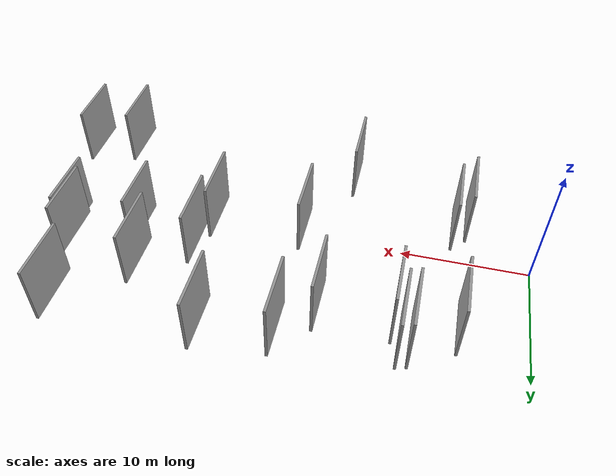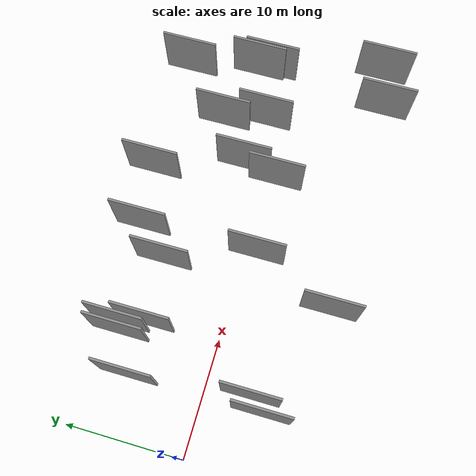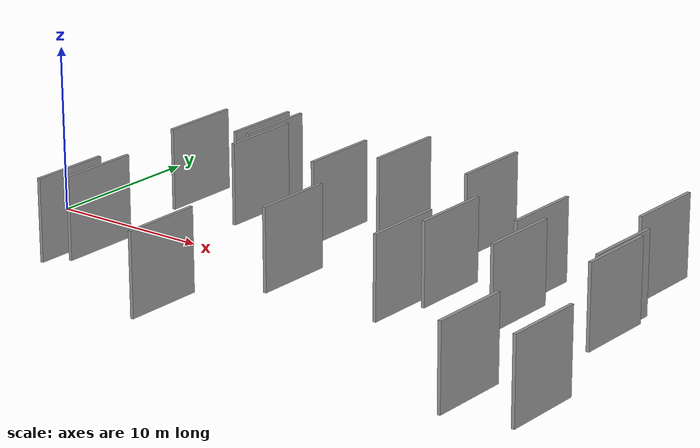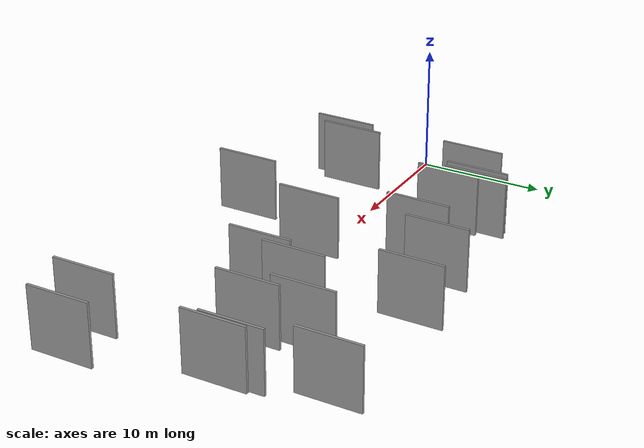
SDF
<sdf version="1.6">
 <world name="default">
  <scene>
   <sky><clouds><speed>12</speed></clouds></sky>
   <ambient>0.4 0.4 0.4 1</ambient>
   <background>0.7 0.7 0.7 1</background>
   <shadows>1</shadows>
  </scene>
  <gravity>0 0 -9.8066</gravity>
  <magnetic_field>6e-06 2.3e-05 -4.2e-05</magnetic_field>
  <physics default="0" name="default_physics" type="ode">
   <ode>
    <solver>
     <type>quick</type>
     <iters>10</iters>
     <sor>1.0</sor>
     <use_dynamic_moi_rescaling>0</use_dynamic_moi_rescaling>
    </solver>
    <constraints>
     <cfm>0</cfm>
     <erp>0.2</erp>
     <contact_max_correcting_vel>100</contact_max_correcting_vel>
     <contact_surface_layer>0.001</contact_surface_layer>
    </constraints>
   </ode>
   <max_step_size>0.004</max_step_size>
   <real_time_factor>1</real_time_factor>
   <real_time_update_rate>250</real_time_update_rate>
  </physics>
  <light name="sun" type="directional">
   <pose>0 0 10 0 0 0</pose>
   <diffuse>0.8 0.8 0.8 1</diffuse>
   <specular>0.2 0.2 0.2 1</specular>
   <attenuation>
    <range>1000</range>
    <constant>0.9</constant>
    <linear>0.01</linear>
    <quadratic>0.001</quadratic>
   </attenuation>
   <direction>-0.5 0.1 -0.9</direction>
  </light>
  <model name="grey_wall_1">
   <static>1</static>
   <pose>6.1641 -3.7727 0.0 0.000000 0.000000 1.570796</pose>
   <link name="link">
    <pose>0 0 2.50 0 0 0</pose>
    <collision name="collision"><geometry><box><size>5.00 0.2 5.00</size></box></geometry></collision>
    <visual name="visual">
     <cast_shadows>0</cast_shadows>
     <geometry><box><size>5.00 0.2 5.00</size></box></geometry>
     <material>
      <script>
       <uri>model://grey_wall/materials/scripts</uri>
       <uri>model://grey_wall/materials/textures</uri>
       <name>vrc/grey_wall</name>
      </script>
     </material>
    </visual>
   </link>
  </model>
  <model name="grey_wall_2">
   <static>1</static>
   <pose>26.2508 2.5221 0.0 0.000000 0.000000 1.570796</pose>
   <link name="link">
    <pose>0 0 2.50 0 0 0</pose>
    <collision name="collision"><geometry><box><size>5.00 0.2 5.00</size></box></geometry></collision>
    <visual name="visual">
     <cast_shadows>0</cast_shadows>
     <geometry><box><size>5.00 0.2 5.00</size></box></geometry>
     <material>
      <script>
       <uri>model://grey_wall/materials/scripts</uri>
       <uri>model://grey_wall/materials/textures</uri>
       <name>vrc/grey_wall</name>
      </script>
     </material>
    </visual>
   </link>
  </model>
  <model name="grey_wall_3">
   <static>1</static>
   <pose>36.4017 3.8756 0.0 0.000000 0.000000 1.570796</pose>
   <link name="link">
    <pose>0 0 2.50 0 0 0</pose>
    <collision name="collision"><geometry><box><size>5.00 0.2 5.00</size></box></geometry></collision>
    <visual name="visual">
     <cast_shadows>0</cast_shadows>
     <geometry><box><size>5.00 0.2 5.00</size></box></geometry>
     <material>
      <script>
       <uri>model://grey_wall/materials/scripts</uri>
       <uri>model://grey_wall/materials/textures</uri>
       <name>vrc/grey_wall</name>
      </script>
     </material>
    </visual>
   </link>
  </model>
  <model name="grey_wall_4">
   <static>1</static>
   <pose>31.1957 1.8677 0.0 0.000000 0.000000 1.570796</pose>
   <link name="link">
    <pose>0 0 2.50 0 0 0</pose>
    <collision name="collision"><geometry><box><size>5.00 0.2 5.00</size></box></geometry></collision>
    <visual name="visual">
     <cast_shadows>0</cast_shadows>
     <geometry><box><size>5.00 0.2 5.00</size></box></geometry>
     <material>
      <script>
       <uri>model://grey_wall/materials/scripts</uri>
       <uri>model://grey_wall/materials/textures</uri>
       <name>vrc/grey_wall</name>
      </script>
     </material>
    </visual>
   </link>
  </model>
  <model name="grey_wall_5">
   <static>1</static>
   <pose>15.3602 6.6557 0.0 0.000000 0.000000 1.570796</pose>
   <link name="link">
    <pose>0 0 2.50 0 0 0</pose>
    <collision name="collision"><geometry><box><size>5.00 0.2 5.00</size></box></geometry></collision>
    <visual name="visual">
     <cast_shadows>0</cast_shadows>
     <geometry><box><size>5.00 0.2 5.00</size></box></geometry>
     <material>
      <script>
       <uri>model://grey_wall/materials/scripts</uri>
       <uri>model://grey_wall/materials/textures</uri>
       <name>vrc/grey_wall</name>
      </script>
     </material>
    </visual>
   </link>
  </model>
  <model name="grey_wall_6">
   <static>1</static>
   <pose>25.4307 -0.7055 0.0 0.000000 0.000000 1.570796</pose>
   <link name="link">
    <pose>0 0 2.50 0 0 0</pose>
    <collision name="collision"><geometry><box><size>5.00 0.2 5.00</size></box></geometry></collision>
    <visual name="visual">
     <cast_shadows>0</cast_shadows>
     <geometry><box><size>5.00 0.2 5.00</size></box></geometry>
     <material>
      <script>
       <uri>model://grey_wall/materials/scripts</uri>
       <uri>model://grey_wall/materials/textures</uri>
       <name>vrc/grey_wall</name>
      </script>
     </material>
    </visual>
   </link>
  </model>
  <model name="grey_wall_7">
   <static>1</static>
   <pose>8.3149 8.2045 0.0 0.000000 0.000000 1.570796</pose>
   <link name="link">
    <pose>0 0 2.50 0 0 0</pose>
    <collision name="collision"><geometry><box><size>5.00 0.2 5.00</size></box></geometry></collision>
    <visual name="visual">
     <cast_shadows>0</cast_shadows>
     <geometry><box><size>5.00 0.2 5.00</size></box></geometry>
     <material>
      <script>
       <uri>model://grey_wall/materials/scripts</uri>
       <uri>model://grey_wall/materials/textures</uri>
       <name>vrc/grey_wall</name>
      </script>
     </material>
    </visual>
   </link>
  </model>
  <model name="grey_wall_8">
   <static>1</static>
   <pose>9.6801 6.3993 0.0 0.000000 0.000000 1.570796</pose>
   <link name="link">
    <pose>0 0 2.50 0 0 0</pose>
    <collision name="collision"><geometry><box><size>5.00 0.2 5.00</size></box></geometry></collision>
    <visual name="visual">
     <cast_shadows>0</cast_shadows>
     <geometry><box><size>5.00 0.2 5.00</size></box></geometry>
     <material>
      <script>
       <uri>model://grey_wall/materials/scripts</uri>
       <uri>model://grey_wall/materials/textures</uri>
       <name>vrc/grey_wall</name>
      </script>
     </material>
    </visual>
   </link>
  </model>
  <model name="grey_wall_9">
   <static>1</static>
   <pose>5.0648 6.3262 0.0 0.000000 0.000000 1.570796</pose>
   <link name="link">
    <pose>0 0 2.50 0 0 0</pose>
    <collision name="collision"><geometry><box><size>5.00 0.2 5.00</size></box></geometry></collision>
    <visual name="visual">
     <cast_shadows>0</cast_shadows>
     <geometry><box><size>5.00 0.2 5.00</size></box></geometry>
     <material>
      <script>
       <uri>model://grey_wall/materials/scripts</uri>
       <uri>model://grey_wall/materials/textures</uri>
       <name>vrc/grey_wall</name>
      </script>
     </material>
    </visual>
   </link>
  </model>
  <model name="grey_wall_10">
   <static>1</static>
   <pose>18.0719 -0.9629 0.0 0.000000 0.000000 1.570796</pose>
   <link name="link">
    <pose>0 0 2.50 0 0 0</pose>
    <collision name="collision"><geometry><box><size>5.00 0.2 5.00</size></box></geometry></collision>
    <visual name="visual">
     <cast_shadows>0</cast_shadows>
     <geometry><box><size>5.00 0.2 5.00</size></box></geometry>
     <material>
      <script>
       <uri>model://grey_wall/materials/scripts</uri>
       <uri>model://grey_wall/materials/textures</uri>
       <name>vrc/grey_wall</name>
      </script>
     </material>
    </visual>
   </link>
  </model>
  <model name="grey_wall_11">
   <static>1</static>
   <pose>5.0870 -4.9607 0.0 0.000000 0.000000 1.570796</pose>
   <link name="link">
    <pose>0 0 2.50 0 0 0</pose>
    <collision name="collision"><geometry><box><size>5.00 0.2 5.00</size></box></geometry></collision>
    <visual name="visual">
     <cast_shadows>0</cast_shadows>
     <geometry><box><size>5.00 0.2 5.00</size></box></geometry>
     <material>
      <script>
       <uri>model://grey_wall/materials/scripts</uri>
       <uri>model://grey_wall/materials/textures</uri>
       <name>vrc/grey_wall</name>
      </script>
     </material>
    </visual>
   </link>
  </model>
  <model name="grey_wall_12">
   <static>1</static>
   <pose>35.0499 10.2247 0.0 0.000000 0.000000 1.570796</pose>
   <link name="link">
    <pose>0 0 2.50 0 0 0</pose>
    <collision name="collision"><geometry><box><size>5.00 0.2 5.00</size></box></geometry></collision>
    <visual name="visual">
     <cast_shadows>0</cast_shadows>
     <geometry><box><size>5.00 0.2 5.00</size></box></geometry>
     <material>
      <script>
       <uri>model://grey_wall/materials/scripts</uri>
       <uri>model://grey_wall/materials/textures</uri>
       <name>vrc/grey_wall</name>
      </script>
     </material>
    </visual>
   </link>
  </model>
  <model name="grey_wall_13">
   <static>1</static>
   <pose>35.3640 -8.5149 0.0 0.000000 0.000000 1.570796</pose>
   <link name="link">
    <pose>0 0 2.50 0 0 0</pose>
    <collision name="collision"><geometry><box><size>5.00 0.2 5.00</size></box></geometry></collision>
    <visual name="visual">
     <cast_shadows>0</cast_shadows>
     <geometry><box><size>5.00 0.2 5.00</size></box></geometry>
     <material>
      <script>
       <uri>model://grey_wall/materials/scripts</uri>
       <uri>model://grey_wall/materials/textures</uri>
       <name>vrc/grey_wall</name>
      </script>
     </material>
    </visual>
   </link>
  </model>
  <model name="grey_wall_14">
   <static>1</static>
   <pose>17.9203 9.4500 0.0 0.000000 0.000000 1.570796</pose>
   <link name="link">
    <pose>0 0 2.50 0 0 0</pose>
    <collision name="collision"><geometry><box><size>5.00 0.2 5.00</size></box></geometry></collision>
    <visual name="visual">
     <cast_shadows>0</cast_shadows>
     <geometry><box><size>5.00 0.2 5.00</size></box></geometry>
     <material>
      <script>
       <uri>model://grey_wall/materials/scripts</uri>
       <uri>model://grey_wall/materials/textures</uri>
       <name>vrc/grey_wall</name>
      </script>
     </material>
    </visual>
   </link>
  </model>
  <model name="grey_wall_15">
   <static>1</static>
   <pose>9.0961 8.4285 0.0 0.000000 0.000000 1.570796</pose>
   <link name="link">
    <pose>0 0 2.50 0 0 0</pose>
    <collision name="collision"><geometry><box><size>5.00 0.2 5.00</size></box></geometry></collision>
    <visual name="visual">
     <cast_shadows>0</cast_shadows>
     <geometry><box><size>5.00 0.2 5.00</size></box></geometry>
     <material>
      <script>
       <uri>model://grey_wall/materials/scripts</uri>
       <uri>model://grey_wall/materials/textures</uri>
       <name>vrc/grey_wall</name>
      </script>
     </material>
    </visual>
   </link>
  </model>
  <model name="grey_wall_16">
   <static>1</static>
   <pose>23.5340 10.2240 0.0 0.000000 0.000000 1.570796</pose>
   <link name="link">
    <pose>0 0 2.50 0 0 0</pose>
    <collision name="collision"><geometry><box><size>5.00 0.2 5.00</size></box></geometry></collision>
    <visual name="visual">
     <cast_shadows>0</cast_shadows>
     <geometry><box><size>5.00 0.2 5.00</size></box></geometry>
     <material>
      <script>
       <uri>model://grey_wall/materials/scripts</uri>
       <uri>model://grey_wall/materials/textures</uri>
       <name>vrc/grey_wall</name>
      </script>
     </material>
    </visual>
   </link>
  </model>
  <model name="grey_wall_17">
   <static>1</static>
   <pose>39.2092 -7.6885 0.0 0.000000 0.000000 1.570796</pose>
   <link name="link">
    <pose>0 0 2.50 0 0 0</pose>
    <collision name="collision"><geometry><box><size>5.00 0.2 5.00</size></box></geometry></collision>
    <visual name="visual">
     <cast_shadows>0</cast_shadows>
     <geometry><box><size>5.00 0.2 5.00</size></box></geometry>
     <material>
      <script>
       <uri>model://grey_wall/materials/scripts</uri>
       <uri>model://grey_wall/materials/textures</uri>
       <name>vrc/grey_wall</name>
      </script>
     </material>
    </visual>
   </link>
  </model>
  <model name="grey_wall_18">
   <static>1</static>
   <pose>14.8753 -8.2486 0.0 0.000000 0.000000 1.570796</pose>
   <link name="link">
    <pose>0 0 2.50 0 0 0</pose>
    <collision name="collision"><geometry><box><size>5.00 0.2 5.00</size></box></geometry></collision>
    <visual name="visual">
     <cast_shadows>0</cast_shadows>
     <geometry><box><size>5.00 0.2 5.00</size></box></geometry>
     <material>
      <script>
       <uri>model://grey_wall/materials/scripts</uri>
       <uri>model://grey_wall/materials/textures</uri>
       <name>vrc/grey_wall</name>
      </script>
     </material>
    </visual>
   </link>
  </model>
  <model name="grey_wall_19">
   <static>1</static>
   <pose>36.7167 2.7261 0.0 0.000000 0.000000 1.570796</pose>
   <link name="link">
    <pose>0 0 2.50 0 0 0</pose>
    <collision name="collision"><geometry><box><size>5.00 0.2 5.00</size></box></geometry></collision>
    <visual name="visual">
     <cast_shadows>0</cast_shadows>
     <geometry><box><size>5.00 0.2 5.00</size></box></geometry>
     <material>
      <script>
       <uri>model://grey_wall/materials/scripts</uri>
       <uri>model://grey_wall/materials/textures</uri>
       <name>vrc/grey_wall</name>
      </script>
     </material>
    </visual>
   </link>
  </model>
  <model name="grey_wall_20">
   <static>1</static>
   <pose>30.1353 5.5513 0.0 0.000000 0.000000 1.570796</pose>
   <link name="link">
    <pose>0 0 2.50 0 0 0</pose>
    <collision name="collision"><geometry><box><size>5.00 0.2 5.00</size></box></geometry></collision>
    <visual name="visual">
     <cast_shadows>0</cast_shadows>
     <geometry><box><size>5.00 0.2 5.00</size></box></geometry>
     <material>
      <script>
       <uri>model://grey_wall/materials/scripts</uri>
       <uri>model://grey_wall/materials/textures</uri>
       <name>vrc/grey_wall</name>
      </script>
     </material>
    </visual>
   </link>
  </model>
 </world>
</sdf>
